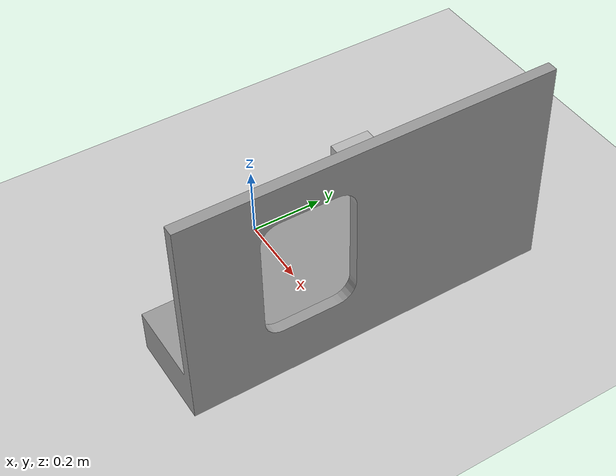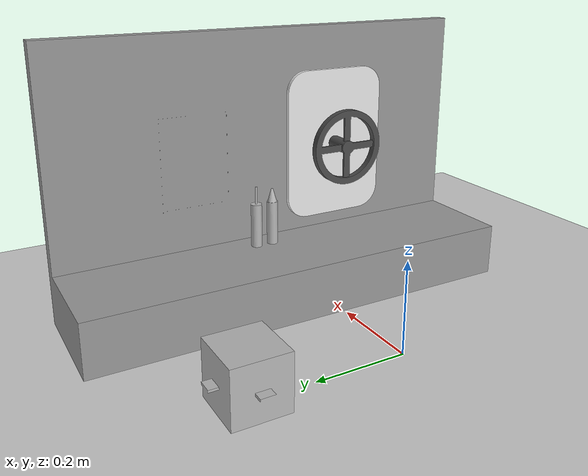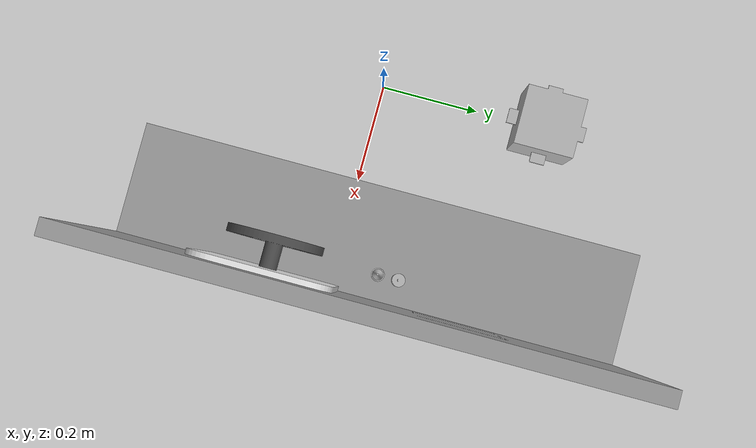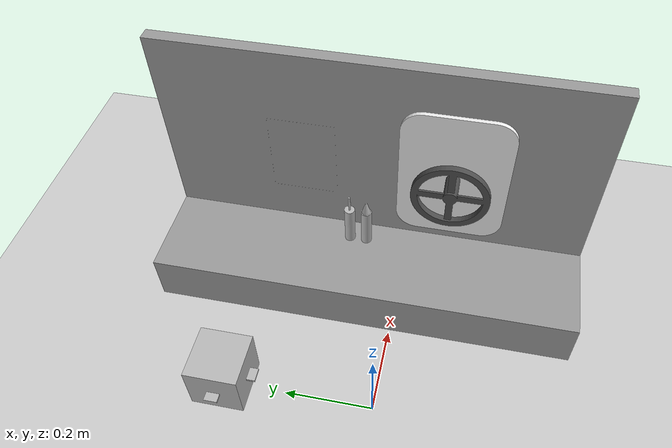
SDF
<?xml version="1.0"?>
<sdf version="1.7">
  <world name="default">
    <include>
      <uri>model://ground_plane</uri>
    </include>
    <include>
      <uri>model://sun</uri>
    </include>
    <include>
      <uri>model://iva_panel</uri>
      <pose>0.430 -0.425 0.12 0.0 0.0 1.570796326</pose>
    </include>
    <include>
      <uri>model://iss_pack</uri>
      <pose>0.0 0.34 0.120 -1.570796326 0.0 0.0</pose>
    </include>
    <include>
      <uri>model://leak_detector</uri>
      <pose>0.380 0.09 0.120 1.570796326 0.0 0.0</pose>
    </include>
    <include>
      <uri>model://leak_sealer</uri>
      <pose>0.380 0.13 0.120 1.570796326 0.0 0.0</pose>
    </include>
  </world>
</sdf>

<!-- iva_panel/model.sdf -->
<sdf version="1.7">
  <model name="iva_panel">

    <link name="station">
      <pose>0.0 0.0 0.0 0.0 0.0 0.0</pose>
      <inertial>
        <mass>100.0</mass>
        <pose>0.0 0.0 0.0 0.0 0.0 0.0</pose>
        <inertia>
          <ixx>1.0</ixx>
          <ixy>0.0</ixy>
          <ixz>0.0</ixz>
          <iyy>1.0</iyy>
          <iyz>0.0</iyz>
          <izz>1.0</izz>
        </inertia>
      </inertial>
      <visual name="station_visual">
        <geometry>
          <mesh>
            <uri>model://iva_panel/meshes/iva_station.stl</uri>
            <scale>0.001 0.001 0.001</scale>
          </mesh>
        </geometry>
        <material>
          <script>
            <uri>file://media/materials/scripts/gazebo.material</uri>
            <name>Gazebo/Grey</name>
          </script>
        </material>
      </visual>
      <collision name="station_collision">
        <geometry>
          <mesh>
            <uri>model://iva_panel/meshes/iva_station.stl</uri>
            <scale>0.001 0.001 0.001</scale>
          </mesh>
        </geometry>
      </collision>
    </link>

    <link name="airlock">
      <pose>0.325 0.0 0.205 -1.570796 0.0 0.0</pose>
      <inertial>
        <mass>2.309</mass>
        <inertia>
          <ixx>0.023</ixx>
          <ixy>0.0</ixy>
          <ixz>0.0</ixz>
          <iyy>0.012</iyy>
          <iyz>0.0</iyz>
          <izz>0.034</izz>
        </inertia>
      </inertial>
      <visual name="airlock_visual">
        <geometry>
          <mesh>
            <uri>model://iva_panel/meshes/airlock.stl</uri>
            <scale>0.001 0.001 0.001</scale>
          </mesh>
        </geometry>
        <material>
          <script>
            <uri>file://media/materials/scripts/gazebo.material</uri>
            <name>Gazebo/White</name>
          </script>
        </material>
      </visual>
      <collision name="airlock_collision">
        <geometry>
          <mesh>
            <uri>model://iva_panel/meshes/airlock.stl</uri>
            <scale>0.001 0.001 0.001</scale>
          </mesh>
        </geometry>
      </collision>
    </link>

    <link name="handle">
      <pose>0.325 0.0625 0.205 0.0 0.0 0.0</pose>
      <inertial>
        <mass>0.439</mass>
        <inertia>
          <ixx>0.001</ixx>
          <ixy>0.0</ixy>
          <ixz>0.0</ixz>
          <iyy>0.002</iyy>
          <iyz>0.0</iyz>
          <izz>0.001</izz>
        </inertia>
      </inertial>
      <visual name="handle_visual">
        <geometry>
          <mesh>
            <uri>model://iva_panel/meshes/wheel_handle.stl</uri>
            <scale>0.001 0.001 0.001</scale>
          </mesh>
        </geometry>
        <material>
          <script>
            <uri>file://media/materials/scripts/gazebo.material</uri>
            <name>Gazebo/DarkGrey</name>
          </script>
        </material>
      </visual>
      <collision name="handle_collision">
        <geometry>
          <mesh>
            <uri>model://iva_panel/meshes/wheel_handle.stl</uri>
            <scale>0.001 0.001 0.001</scale>
          </mesh>
        </geometry>
      </collision>
    </link>

    <joint name="fixed" type="fixed">
      <parent>world</parent>
      <child>station</child>
    </joint>

    <joint name="door_hinge" type="revolute">
      <parent>station</parent>
      <child>airlock</child>
      <pose>-0.125 0.0 0.0 0.0 0.0 0.0</pose>
      <axis>
      	<xyz>0.0 -1.0 0.0</xyz>
      	<limit>
          <lower>0.0</lower>
          <upper>1.570796</upper>
        </limit>
        <dynamics>
          <damping>0.01</damping>
          <friction>0.01</friction>
        </dynamics>
      </axis>
    </joint>

    <joint name="handle_axle" type="revolute">
      <parent>airlock</parent>
      <child>handle</child>
      <pose>0.0 0.0 0.0 0.0 0.0 0.0</pose>
      <axis>
      	<xyz>0.0 1.0 0.0</xyz>
      	<dynamics>
          <damping>0.01</damping>
          <friction>0.01</friction>
        </dynamics>
      </axis>
    </joint>

  </model>
</sdf>

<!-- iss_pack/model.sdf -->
<sdf version="1.7">
  <model name="iss_pack">

    <link name="pack">
      <pose>0.0 0.0 0.0 0.0 0.0 0.0</pose>
      <inertial>
        <pose>0.0 0.0625 0.0 0.0 0.0 0.0</pose>
        <inertia>
          <ixx>0.005</ixx>
          <ixy>0.0</ixy>
          <ixz>0.0</ixz>
          <iyy>0.005</iyy>
          <iyz>0.0</iyz>
          <izz>0.005</izz>
        </inertia>
        <mass>1.0</mass>
      </inertial>
      <visual name="visual">
        <geometry>
          <mesh>
            <uri>model://iss_pack/meshes/iss_pack.stl</uri>
            <scale>0.001 0.001 0.001</scale>
          </mesh>
        </geometry>
        <material>Gazebo/White</material>
      </visual>
      <collision name="collision">
        <geometry>
          <mesh>
            <uri>model://iss_pack/meshes/iss_pack.stl</uri>
            <scale>0.001 0.001 0.001</scale>
          </mesh>
        </geometry>
      </collision>
    </link>

  </model>
</sdf>

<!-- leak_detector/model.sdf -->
<sdf version="1.7">
  <model name="leak_detector">

    <link name="tool">
      <pose>0.0 0.0 0.0 0.0 0.0 0.0</pose>
      <inertial>
        <pose>0.0 0.05 0.0 0.0 0.0 0.0</pose>
        <inertia>
          <ixx>0.001</ixx>
          <ixy>0.0</ixy>
          <ixz>0.0</ixz>
          <iyy>0.001</iyy>
          <iyz>0.0</iyz>
          <izz>0.001</izz>
        </inertia>
        <mass>0.05</mass>
      </inertial>
      <visual name="visual">
        <geometry>
          <mesh>
            <uri>model://leak_detector/meshes/ultrasonic_detector.stl</uri>
            <scale>0.001 0.001 0.001</scale>
          </mesh>
        </geometry>
        <material>Gazebo/White</material>
      </visual>
      <collision name="collision">
        <geometry>
          <mesh>
            <uri>model://leak_detector/meshes/ultrasonic_detector.stl</uri>
            <scale>0.001 0.001 0.001</scale>
          </mesh>
        </geometry>
      </collision>
    </link>

  </model>
</sdf>

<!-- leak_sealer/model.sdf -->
<sdf version="1.7">
  <model name="leak_sealer">

    <link name="tube">
      <pose>0.0 0.0 0.0 0.0 0.0 0.0</pose>
      <inertial>
        <pose>0.0 0.05 0.0 0.0 0.0 0.0</pose>
        <inertia>
          <ixx>0.001</ixx>
          <ixy>0.0</ixy>
          <ixz>0.0</ixz>
          <iyy>0.001</iyy>
          <iyz>0.0</iyz>
          <izz>0.001</izz>
        </inertia>
        <mass>0.05</mass>
      </inertial>
      <visual name="visual">
        <geometry>
          <mesh>
            <uri>model://leak_sealer/meshes/sealant_tube.stl</uri>
            <scale>0.001 0.001 0.001</scale>
          </mesh>
        </geometry>
        <material>Gazebo/White</material>
      </visual>
      <collision name="collision">
        <geometry>
          <mesh>
            <uri>model://leak_sealer/meshes/sealant_tube.stl</uri>
            <scale>0.001 0.001 0.001</scale>
          </mesh>
        </geometry>
      </collision>
    </link>

  </model>
</sdf>
